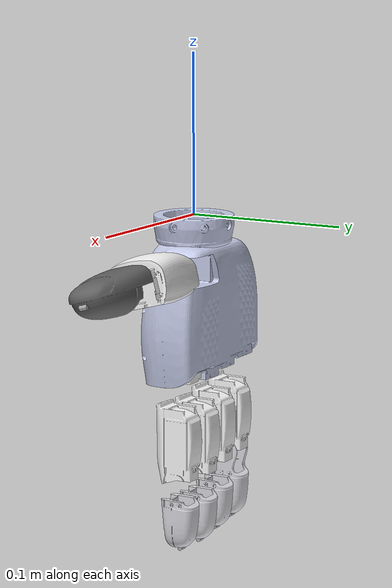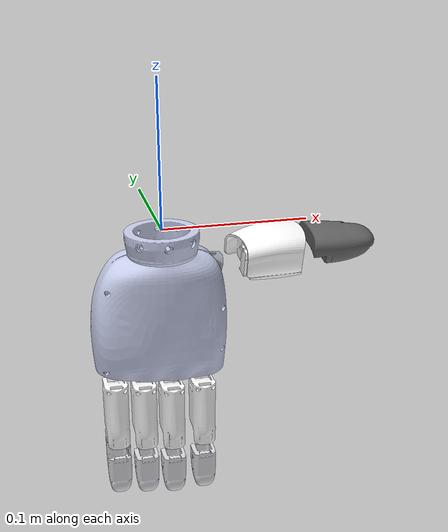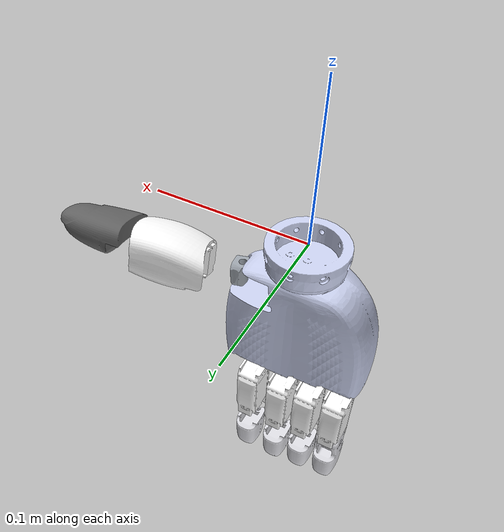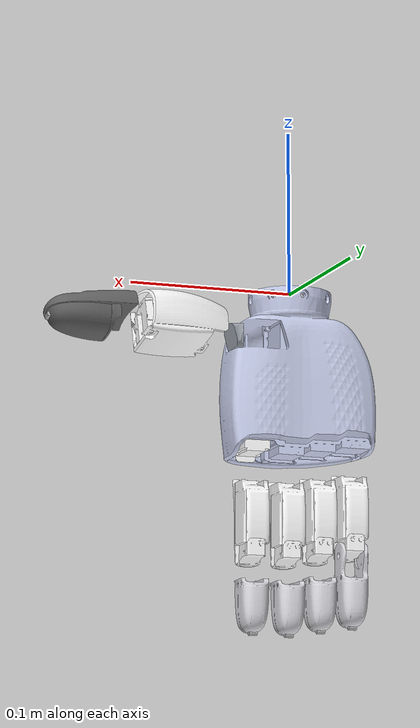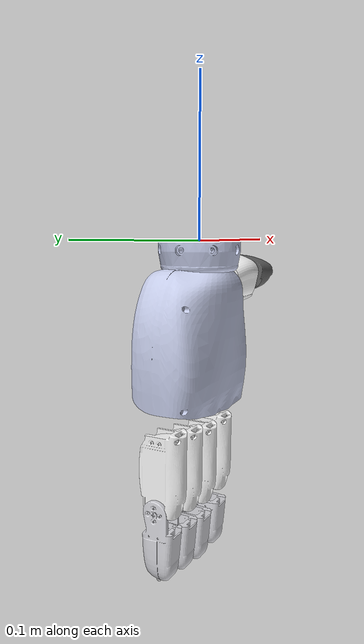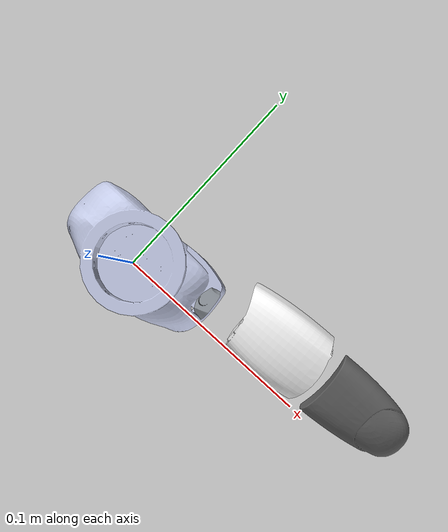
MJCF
<mujoco model="xhand_right">
  <compiler angle="radian" meshdir="./meshes/"/>

  <asset>
    <mesh name="right_hand_link" file="right_hand_link.STL"/>
    <mesh name="right_hand_thumb_bend_link" file="right_hand_thumb_bend_link.STL"/>
    <mesh name="right_hand_thumb_rota_link1" file="right_hand_thumb_rota_link1.STL"/>
    <mesh name="right_hand_thumb_rota_link2" file="right_hand_thumb_rota_link2.STL"/>
    <mesh name="right_hand_thumb_rota_tip" file="right_hand_thumb_rota_tip.STL"/>
    <mesh name="right_hand_index_bend_link" file="right_hand_index_bend_link.STL"/>
    <mesh name="right_hand_index_rota_link1" file="right_hand_index_rota_link1.STL"/>
    <mesh name="right_hand_index_rota_link2" file="right_hand_index_rota_link2.STL"/>
    <mesh name="right_hand_index_rota_tip" file="right_hand_index_rota_tip.STL"/>
    <mesh name="right_hand_mid_link1" file="right_hand_mid_link1.STL"/>
    <mesh name="right_hand_mid_link2" file="right_hand_mid_link2.STL"/>
    <mesh name="right_hand_mid_tip" file="right_hand_mid_tip.STL"/>
    <mesh name="right_hand_ring_link1" file="right_hand_ring_link1.STL"/>
    <mesh name="right_hand_ring_link2" file="right_hand_ring_link2.STL"/>
    <mesh name="right_hand_ring_tip" file="right_hand_ring_tip.STL"/>
    <mesh name="right_hand_pinky_link1" file="right_hand_pinky_link1.STL"/>
    <mesh name="right_hand_pinky_link2" file="right_hand_pinky_link2.STL"/>
    <mesh name="right_hand_pinky_tip" file="right_hand_pinky_tip.STL"/>
    <mesh name="right_hand_ee_link" file="right_hand_ee_link.STL"/>
  </asset>

  <worldbody>
    <geom type="mesh" contype="0" conaffinity="0" group="1" density="0" rgba="0.792157 0.819608 0.933333 1" mesh="right_hand_link"/>
    <geom type="mesh" rgba="0.792157 0.819608 0.933333 1" mesh="right_hand_link"/>
    <geom pos="0 0 -0.065" quat="1 0 0 0" type="mesh" contype="0" conaffinity="0" group="1" density="0" rgba="0.698039 0.698039 0.698039 1" mesh="right_hand_ee_link"/>
    <geom pos="0 0 -0.065" quat="1 0 0 0" type="mesh" rgba="0.698039 0.698039 0.698039 1" mesh="right_hand_ee_link"/>
    <body name="right_hand_thumb_bend_link" pos="0.0228 0.0095 -0.0305">
      <inertial pos="0.014728 -0.000946298 9.99381e-05" quat="0.977428 0.193001 0.0799378 0.0315505" mass="0.00988485" diaginertia="3.48585e-07 2.18237e-07 2.08972e-07"/>
      <joint name="right_hand_thumb_bend_joint" pos="0 0 0" axis="0 0 1" range="0 1.83" actuatorfrcrange="-1.1 1.1" damping="1" frictionloss="1"/>
      <geom type="mesh" contype="0" conaffinity="0" group="1" density="0" rgba="0.615686 0.643137 0.67451 1" mesh="right_hand_thumb_bend_link"/>
      <body name="right_hand_thumb_rota_link1" pos="0.028599 0.0083177 0.00178" quat="0.99124 0.130499 0.00265603 0.0201745">
        <inertial pos="0.0287861 0.000236855 0.00247774" quat="-0.216796 0.653638 0.216779 0.691928" mass="0.153227" diaginertia="3.53026e-05 2.87127e-05 2.73927e-05"/>
        <joint name="right_hand_thumb_rota_joint1" pos="0 0 0" axis="0 1 0" range="-1.05 1.57" actuatorfrcrange="-1.1 1.1" damping="1" frictionloss="1"/>
        <geom type="mesh" contype="0" conaffinity="0" group="1" density="0" rgba="1 1 1 1" mesh="right_hand_thumb_rota_link1"/>
        <geom type="mesh" rgba="1 1 1 1" mesh="right_hand_thumb_rota_link1"/>
        <body name="right_hand_thumb_rota_link2" pos="0.0553 0 0">
          <inertial pos="0.0246456 -2.89183e-05 0.00357057" quat="-0.00186069 0.759204 -0.00155693 0.650849" mass="0.0374009" diaginertia="8.09652e-06 6.84887e-06 3.82962e-06"/>
          <joint name="right_hand_thumb_rota_joint2" pos="0 0 0" axis="0 1 0" range="-0.175 1.83" actuatorfrcrange="-0.4 0.4" damping="1" frictionloss="1"/>
          <geom type="mesh" contype="0" conaffinity="0" group="1" density="0" rgba="0.384314 0.384314 0.384314 1" mesh="right_hand_thumb_rota_link2"/>
          <geom type="mesh" rgba="0.384314 0.384314 0.384314 1" mesh="right_hand_thumb_rota_link2"/>
          <geom pos="0.0504025 0 0" quat="1 0 0 0" type="mesh" contype="0" conaffinity="0" group="1" density="0" rgba="0.698039 0.698039 0.698039 1" mesh="right_hand_thumb_rota_tip"/>
          <geom pos="0.0504025 0 0" quat="1 0 0 0" type="mesh" rgba="0.698039 0.698039 0.698039 1" mesh="right_hand_thumb_rota_tip"/>
        </body>
      </body>
    </body>
    <body name="right_hand_index_bend_link" pos="0.0265 0.0065 -0.0899">
      <inertial pos="1.36538e-05 0.000296873 0.00896969" quat="0.997151 -0.0753904 -0.00111959 -0.00217774" mass="0.0678358" diaginertia="1.2458e-05 1.17987e-05 3.93143e-06"/>
      <joint name="right_hand_index_bend_joint" pos="0 0 0" axis="0 -1 0" range="-0.175 0.175" actuatorfrcrange="-0.4 0.4" damping="1" frictionloss="1"/>
      <geom type="mesh" contype="0" conaffinity="0" group="1" density="0" rgba="1 1 1 1" mesh="right_hand_index_bend_link"/>
      <body name="right_hand_index_rota_link1" pos="0 0 -0.0178">
        <inertial pos="1.33096e-05 -0.00117935 -0.0314668" quat="0.999972 0.00501873 -0.0036222 0.00411172" mass="0.0630023" diaginertia="1.27462e-05 1.13166e-05 3.96726e-06"/>
        <joint name="right_hand_index_joint1" pos="0 0 0" axis="1 0 0" range="0 1.92" actuatorfrcrange="-1.1 1.1" damping="1" frictionloss="1"/>
        <geom type="mesh" contype="0" conaffinity="0" group="1" density="0" rgba="1 1 1 1" mesh="right_hand_index_rota_link1"/>
        <geom type="mesh" rgba="1 1 1 1" mesh="right_hand_index_rota_link1"/>
        <body name="right_hand_index_rota_link2" pos="0 0 -0.0558">
          <inertial pos="-0.000105985 -0.000552346 -0.0269534" quat="0.999776 0.00709054 -0.0176373 0.00935454" mass="0.0179783" diaginertia="1.57535e-06 1.41212e-06 9.24998e-07"/>
          <joint name="right_hand_index_joint2" pos="0 0 0" axis="1 0 0" range="0 1.92" actuatorfrcrange="-0.4 0.4" damping="1" frictionloss="1"/>
          <geom type="mesh" contype="0" conaffinity="0" group="1" density="0" rgba="0.866667 0.866667 0.890196 1" mesh="right_hand_index_rota_link2"/>
          <geom type="mesh" rgba="0.866667 0.866667 0.890196 1" mesh="right_hand_index_rota_link2"/>
          <geom pos="0 0 -0.0425" quat="1 0 0 0" type="mesh" contype="0" conaffinity="0" group="1" density="0" rgba="0.698039 0.698039 0.698039 1" mesh="right_hand_index_rota_tip"/>
          <geom pos="0 0 -0.0425" quat="1 0 0 0" type="mesh" rgba="0.698039 0.698039 0.698039 1" mesh="right_hand_index_rota_tip"/>
        </body>
      </body>
    </body>
    <body name="right_hand_mid_link1" pos="0.004 0.0065 -0.1082">
      <inertial pos="1.33096e-05 -0.00117935 -0.0314668" quat="0.999972 0.00501871 -0.00362219 0.00411173" mass="0.0630023" diaginertia="1.27462e-05 1.13166e-05 3.96726e-06"/>
      <joint name="right_hand_mid_joint1" pos="0 0 0" axis="1 0 0" range="0 1.92" actuatorfrcrange="-1.1 1.1" damping="1" frictionloss="1"/>
      <geom type="mesh" contype="0" conaffinity="0" group="1" density="0" rgba="1 1 1 1" mesh="right_hand_mid_link1"/>
      <geom type="mesh" rgba="1 1 1 1" mesh="right_hand_mid_link1"/>
      <body name="right_hand_mid_link2" pos="0 0 -0.0558">
        <inertial pos="-0.000105985 -0.000552346 -0.0269534" quat="0.999776 0.00709054 -0.0176373 0.00935454" mass="0.0179783" diaginertia="1.57535e-06 1.41212e-06 9.24998e-07"/>
        <joint name="right_hand_mid_joint2" pos="0 0 0" axis="1 0 0" range="0 1.94" actuatorfrcrange="-0.4 0.4" damping="1" frictionloss="1"/>
        <geom type="mesh" contype="0" conaffinity="0" group="1" density="0" rgba="0.866667 0.866667 0.890196 1" mesh="right_hand_mid_link2"/>
        <geom type="mesh" rgba="0.866667 0.866667 0.890196 1" mesh="right_hand_mid_link2"/>
        <geom pos="0 0 -0.0425" quat="1 0 0 0" type="mesh" contype="0" conaffinity="0" group="1" density="0" rgba="0.698039 0.698039 0.698039 1" mesh="right_hand_mid_tip"/>
        <geom pos="0 0 -0.0425" quat="1 0 0 0" type="mesh" rgba="0.698039 0.698039 0.698039 1" mesh="right_hand_mid_tip"/>
      </body>
    </body>
    <body name="right_hand_ring_link1" pos="-0.016 0.0065 -0.1052">
      <inertial pos="1.33095e-05 -0.00117936 -0.0314668" quat="0.999972 0.00501876 -0.0036222 0.00411169" mass="0.0630023" diaginertia="1.27462e-05 1.13166e-05 3.96726e-06"/>
      <joint name="right_hand_ring_joint1" pos="0 0 0" axis="1 0 0" range="0 1.92" actuatorfrcrange="-1.1 1.1" damping="1" frictionloss="1"/>
      <geom type="mesh" contype="0" conaffinity="0" group="1" density="0" rgba="1 1 1 1" mesh="right_hand_ring_link1"/>
      <geom type="mesh" rgba="1 1 1 1" mesh="right_hand_ring_link1"/>
      <body name="right_hand_ring_link2" pos="0 0 -0.0558">
        <inertial pos="-0.000105984 -0.000552346 -0.0269534" quat="0.999776 0.00708969 -0.017637 0.00935397" mass="0.0179783" diaginertia="1.57535e-06 1.41212e-06 9.24998e-07"/>
        <joint name="right_hand_ring_joint2" pos="0 0 0" axis="1 0 0" range="0 1.92" actuatorfrcrange="-0.4 0.4" damping="1" frictionloss="1"/>
        <geom type="mesh" contype="0" conaffinity="0" group="1" density="0" rgba="0.866667 0.866667 0.890196 1" mesh="right_hand_ring_link2"/>
        <geom type="mesh" rgba="0.866667 0.866667 0.890196 1" mesh="right_hand_ring_link2"/>
        <geom pos="0 0 -0.0425" quat="1 0 0 0" type="mesh" contype="0" conaffinity="0" group="1" density="0" rgba="0.698039 0.698039 0.698039 1" mesh="right_hand_ring_tip"/>
        <geom pos="0 0 -0.0425" quat="1 0 0 0" type="mesh" rgba="0.698039 0.698039 0.698039 1" mesh="right_hand_ring_tip"/>
      </body>
    </body>
    <body name="right_hand_pinky_link1" pos="-0.036 0.0065 -0.1022">
      <inertial pos="1.33097e-05 -0.00117935 -0.0314668" quat="0.999972 0.00501874 -0.00362219 0.00411174" mass="0.0630023" diaginertia="1.27462e-05 1.13166e-05 3.96726e-06"/>
      <joint name="right_hand_pinky_joint1" pos="0 0 0" axis="1 0 0" range="0 1.92" actuatorfrcrange="-1.1 1.1" damping="1" frictionloss="1"/>
      <geom type="mesh" contype="0" conaffinity="0" group="1" density="0" rgba="1 1 1 1" mesh="right_hand_pinky_link1"/>
      <geom type="mesh" rgba="1 1 1 1" mesh="right_hand_pinky_link1"/>
      <body name="right_hand_pinky_link2" pos="0 0 -0.0558">
        <inertial pos="-0.000105985 -0.000552346 -0.0269534" quat="0.999776 0.00709054 -0.0176373 0.00935453" mass="0.0179783" diaginertia="1.57535e-06 1.41212e-06 9.24998e-07"/>
        <joint name="right_hand_pinky_joint2" pos="0 0 0" axis="1 0 0" range="0 1.92" actuatorfrcrange="-0.4 0.4" damping="1" frictionloss="1"/>
        <geom type="mesh" contype="0" conaffinity="0" group="1" density="0" rgba="0.866667 0.866667 0.890196 1" mesh="right_hand_pinky_link2"/>
        <geom type="mesh" rgba="0.866667 0.866667 0.890196 1" mesh="right_hand_pinky_link2"/>
        <geom pos="0 0 -0.0425" quat="1 0 0 0" type="mesh" contype="0" conaffinity="0" group="1" density="0" rgba="0.698039 0.698039 0.698039 1" mesh="right_hand_pinky_tip"/>
        <geom pos="0 0 -0.0425" quat="1 0 0 0" type="mesh" rgba="0.698039 0.698039 0.698039 1" mesh="right_hand_pinky_tip"/>
      </body>
    </body>
  </worldbody>
</mujoco>
